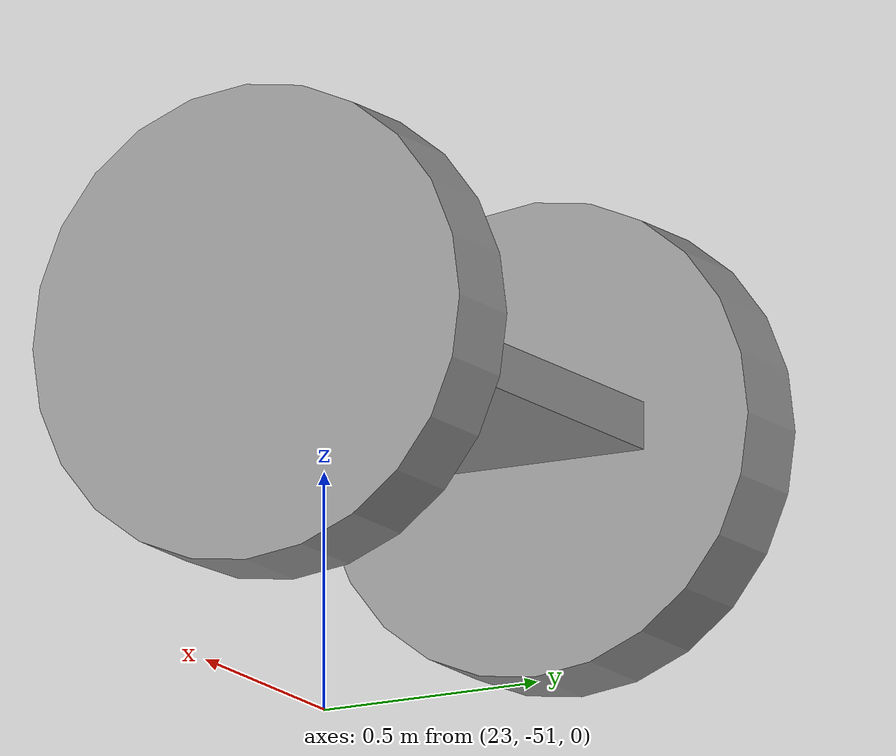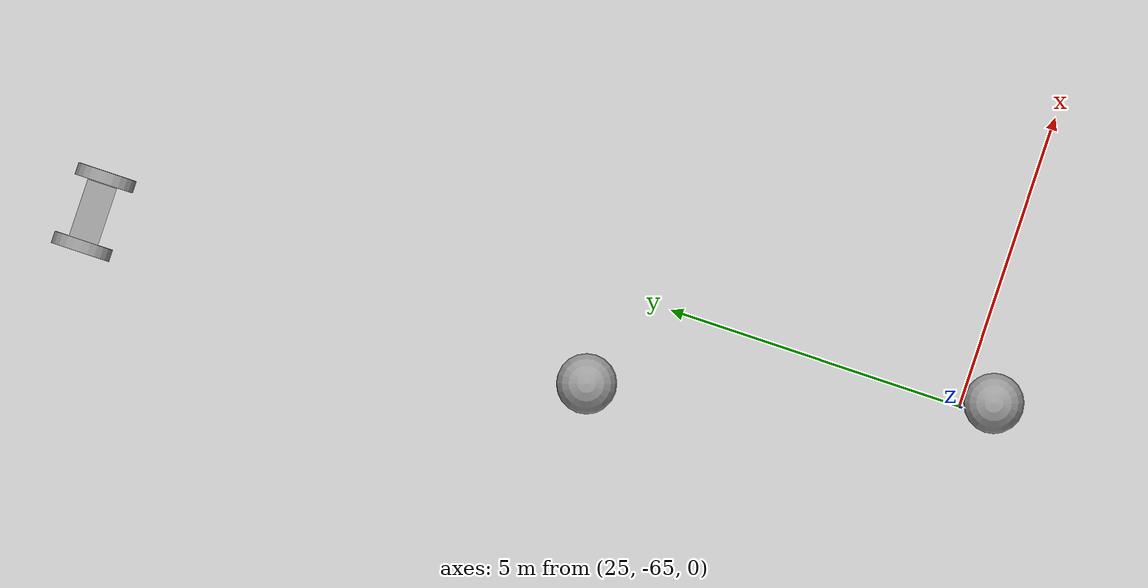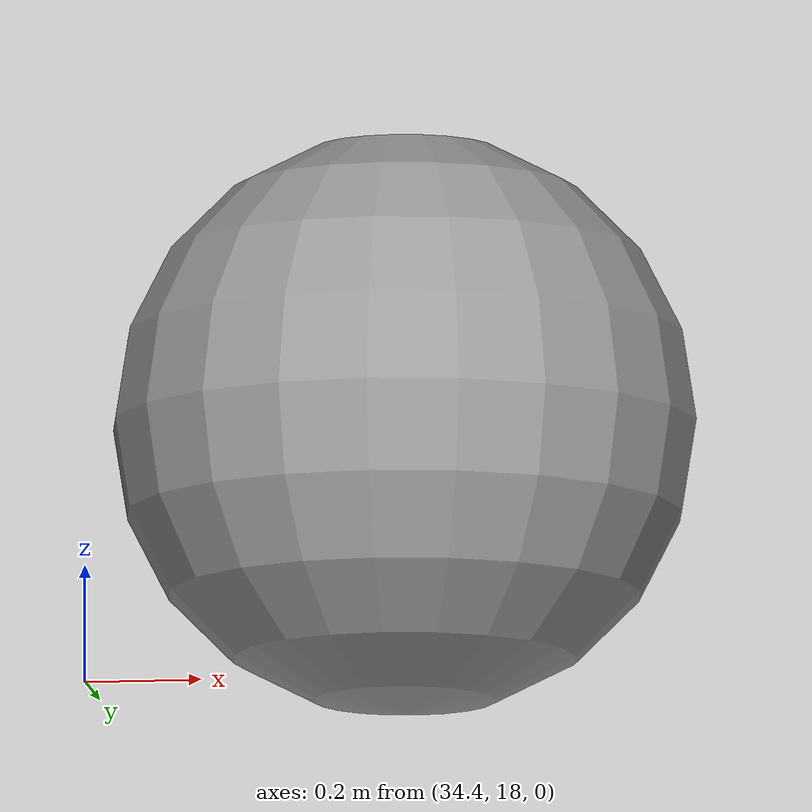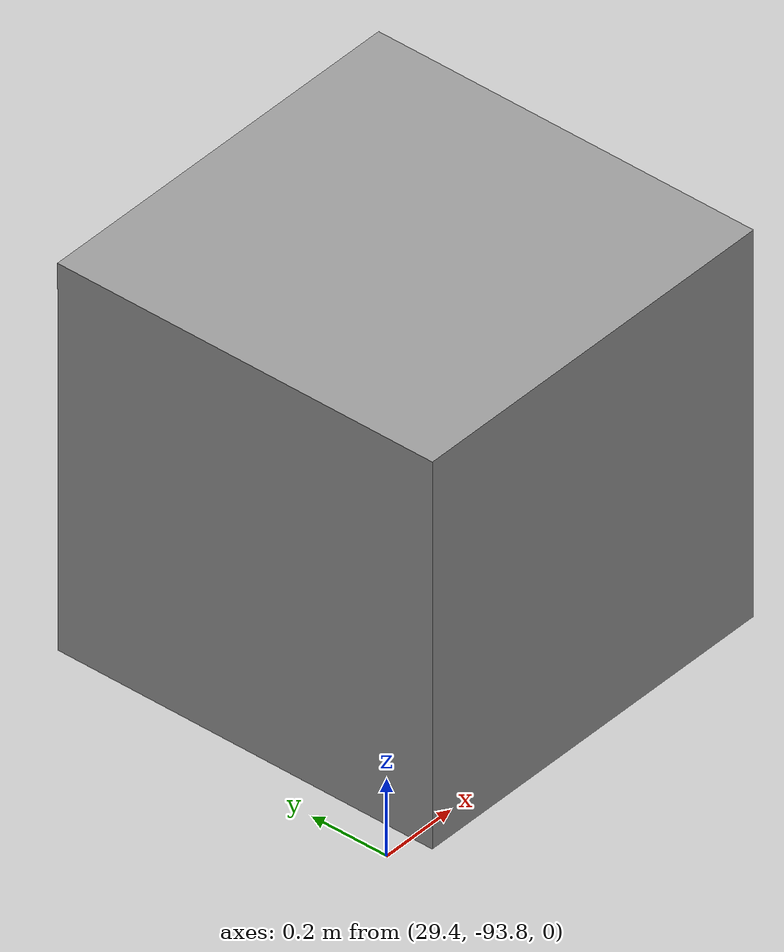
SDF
<?xml version='1.0'?>
<sdf version='1.6'>
  <model name='robot'>
    <link name='link_1'>
      <pose frame=''>23.5228 -50.478 0.5 0 -0 0</pose>
      <inertial>
        <mass>1</mass>
        <inertia>
          <ixx>0.166667</ixx>
          <ixy>0</ixy>
          <ixz>0</ixz>
          <iyy>0.166667</iyy>
          <iyz>0</iyz>
          <izz>0.166667</izz>
        </inertia>
        <pose frame=''>0 0 0 0 -0 0</pose>
      </inertial>
      <gravity>1</gravity>
      <self_collide>0</self_collide>
      <kinematic>0</kinematic>
      <visual name='visual'>
        <pose frame=''>0 0 0 0 -0 0</pose>
        <geometry>
          <box>
            <size>1 0.5 0.1</size>
          </box>
        </geometry>
        <material>
          <lighting>1</lighting>
          <script>
            <uri>file://media/materials/scripts/gazebo.material</uri>
            <name>Gazebo/Grey</name>
          </script>
          <shader type='pixel'>
            <normal_map>__default__</normal_map>
          </shader>
          <ambient>0.3 0.3 0.3 1</ambient>
          <diffuse>0.7 0.7 0.7 1</diffuse>
          <specular>0.01 0.01 0.01 1</specular>
          <emissive>0 0 0 1</emissive>
        </material>
        <transparency>0</transparency>
        <cast_shadows>1</cast_shadows>
      </visual>
      <collision name='collision'>
        <laser_retro>0</laser_retro>
        <max_contacts>10</max_contacts>
        <pose frame=''>0 0 0 0 -0 0</pose>
        <geometry>
          <box>
            <size>1 0.5 0.1</size>
          </box>
        </geometry>
        <surface>
          <friction>
            <ode>
              <mu>1</mu>
              <mu2>1</mu2>
              <fdir1>0 0 0</fdir1>
              <slip1>0</slip1>
              <slip2>0</slip2>
            </ode>
            <torsional>
              <coefficient>1</coefficient>
              <patch_radius>0</patch_radius>
              <surface_radius>0</surface_radius>
              <use_patch_radius>1</use_patch_radius>
              <ode>
                <slip>0</slip>
              </ode>
            </torsional>
          </friction>
          <bounce>
            <restitution_coefficient>0</restitution_coefficient>
            <threshold>1e+06</threshold>
          </bounce>
          <contact>
            <collide_without_contact>0</collide_without_contact>
            <collide_without_contact_bitmask>1</collide_without_contact_bitmask>
            <collide_bitmask>1</collide_bitmask>
            <ode>
              <soft_cfm>0</soft_cfm>
              <soft_erp>0.2</soft_erp>
              <kp>1e+13</kp>
              <kd>1</kd>
              <max_vel>0.01</max_vel>
              <min_depth>0</min_depth>
            </ode>
            <bullet>
              <split_impulse>1</split_impulse>
              <split_impulse_penetration_threshold>-0.01</split_impulse_penetration_threshold>
              <soft_cfm>0</soft_cfm>
              <soft_erp>0.2</soft_erp>
              <kp>1e+13</kp>
              <kd>1</kd>
            </bullet>
          </contact>
        </surface>
      </collision>
    </link>
    <link name='link_14'>
      <pose frame=''>25.9999 -34.7694 0.5 0 -0 0</pose>
      <inertial>
        <mass>1</mass>
        <inertia>
          <ixx>0.1</ixx>
          <ixy>0</ixy>
          <ixz>0</ixz>
          <iyy>0.1</iyy>
          <iyz>0</iyz>
          <izz>0.1</izz>
        </inertia>
      </inertial>
      <visual name='visual'>
        <pose frame=''>0 0 0 0 -0 0</pose>
        <geometry>
          <sphere>
            <radius>0.5</radius>
          </sphere>
        </geometry>
        <material>
          <lighting>1</lighting>
          <script>
            <uri>file://media/materials/scripts/gazebo.material</uri>
            <name>Gazebo/Grey</name>
          </script>
          <shader type='pixel'/>
          <ambient>0.3 0.3 0.3 1</ambient>
          <diffuse>0.7 0.7 0.7 1</diffuse>
          <specular>0.01 0.01 0.01 1</specular>
          <emissive>0 0 0 1</emissive>
        </material>
        <transparency>0</transparency>
        <cast_shadows>1</cast_shadows>
      </visual>
      <collision name='collision'>
        <laser_retro>0</laser_retro>
        <max_contacts>10</max_contacts>
        <pose frame=''>0 0 0 0 -0 0</pose>
        <geometry>
          <sphere>
            <radius>0.5</radius>
          </sphere>
        </geometry>
        <surface>
          <friction>
            <ode>
              <mu>1</mu>
              <mu2>1</mu2>
              <fdir1>0 0 0</fdir1>
              <slip1>0</slip1>
              <slip2>0</slip2>
            </ode>
            <torsional>
              <coefficient>1</coefficient>
              <patch_radius>0</patch_radius>
              <surface_radius>0</surface_radius>
              <use_patch_radius>1</use_patch_radius>
              <ode>
                <slip>0</slip>
              </ode>
            </torsional>
          </friction>
          <bounce>
            <restitution_coefficient>0</restitution_coefficient>
            <threshold>1e+06</threshold>
          </bounce>
          <contact>
            <collide_without_contact>0</collide_without_contact>
            <collide_without_contact_bitmask>1</collide_without_contact_bitmask>
            <collide_bitmask>1</collide_bitmask>
            <ode>
              <soft_cfm>0</soft_cfm>
              <soft_erp>0.2</soft_erp>
              <kp>1e+13</kp>
              <kd>1</kd>
              <max_vel>0.01</max_vel>
              <min_depth>0</min_depth>
            </ode>
            <bullet>
              <split_impulse>1</split_impulse>
              <split_impulse_penetration_threshold>-0.01</split_impulse_penetration_threshold>
              <soft_cfm>0</soft_cfm>
              <soft_erp>0.2</soft_erp>
              <kp>1e+13</kp>
              <kd>1</kd>
            </bullet>
          </contact>
        </surface>
      </collision>
    </link>
    <link name='link_15'>
      <pose frame=''>34.8935 18.4217 0.5 0 -0 0</pose>
      <inertial>
        <mass>1</mass>
        <inertia>
          <ixx>0.1</ixx>
          <ixy>0</ixy>
          <ixz>0</ixz>
          <iyy>0.1</iyy>
          <iyz>0</iyz>
          <izz>0.1</izz>
        </inertia>
      </inertial>
      <visual name='visual'>
        <pose frame=''>0 0 0 0 -0 0</pose>
        <geometry>
          <sphere>
            <radius>0.5</radius>
          </sphere>
        </geometry>
        <material>
          <lighting>1</lighting>
          <script>
            <uri>file://media/materials/scripts/gazebo.material</uri>
            <name>Gazebo/Grey</name>
          </script>
          <shader type='pixel'/>
          <ambient>0.3 0.3 0.3 1</ambient>
          <diffuse>0.7 0.7 0.7 1</diffuse>
          <specular>0.01 0.01 0.01 1</specular>
          <emissive>0 0 0 1</emissive>
        </material>
        <transparency>0</transparency>
        <cast_shadows>1</cast_shadows>
      </visual>
      <collision name='collision'>
        <laser_retro>0</laser_retro>
        <max_contacts>10</max_contacts>
        <pose frame=''>0 0 0 0 -0 0</pose>
        <geometry>
          <sphere>
            <radius>0.5</radius>
          </sphere>
        </geometry>
        <surface>
          <friction>
            <ode>
              <mu>1</mu>
              <mu2>1</mu2>
              <fdir1>0 0 0</fdir1>
              <slip1>0</slip1>
              <slip2>0</slip2>
            </ode>
            <torsional>
              <coefficient>1</coefficient>
              <patch_radius>0</patch_radius>
              <surface_radius>0</surface_radius>
              <use_patch_radius>1</use_patch_radius>
              <ode>
                <slip>0</slip>
              </ode>
            </torsional>
          </friction>
          <bounce>
            <restitution_coefficient>0</restitution_coefficient>
            <threshold>1e+06</threshold>
          </bounce>
          <contact>
            <collide_without_contact>0</collide_without_contact>
            <collide_without_contact_bitmask>1</collide_without_contact_bitmask>
            <collide_bitmask>1</collide_bitmask>
            <ode>
              <soft_cfm>0</soft_cfm>
              <soft_erp>0.2</soft_erp>
              <kp>1e+13</kp>
              <kd>1</kd>
              <max_vel>0.01</max_vel>
              <min_depth>0</min_depth>
            </ode>
            <bullet>
              <split_impulse>1</split_impulse>
              <split_impulse_penetration_threshold>-0.01</split_impulse_penetration_threshold>
              <soft_cfm>0</soft_cfm>
              <soft_erp>0.2</soft_erp>
              <kp>1e+13</kp>
              <kd>1</kd>
            </bullet>
          </contact>
        </surface>
      </collision>
    </link>
    <link name='link_19'>
      <pose frame=''>23.422 -59.0646 0.5 0 -0 0</pose>
      <inertial>
        <mass>1</mass>
        <inertia>
          <ixx>0.1</ixx>
          <ixy>0</ixy>
          <ixz>0</ixz>
          <iyy>0.1</iyy>
          <iyz>0</iyz>
          <izz>0.1</izz>
        </inertia>
      </inertial>
      <visual name='visual'>
        <pose frame=''>0 0 0 0 -0 0</pose>
        <geometry>
          <sphere>
            <radius>0.5</radius>
          </sphere>
        </geometry>
        <material>
          <lighting>1</lighting>
          <script>
            <uri>file://media/materials/scripts/gazebo.material</uri>
            <name>Gazebo/Grey</name>
          </script>
          <shader type='pixel'/>
          <ambient>0.3 0.3 0.3 1</ambient>
          <diffuse>0.7 0.7 0.7 1</diffuse>
          <specular>0.01 0.01 0.01 1</specular>
          <emissive>0 0 0 1</emissive>
        </material>
        <transparency>0</transparency>
        <cast_shadows>1</cast_shadows>
      </visual>
      <collision name='collision'>
        <laser_retro>0</laser_retro>
        <max_contacts>10</max_contacts>
        <pose frame=''>0 0 0 0 -0 0</pose>
        <geometry>
          <sphere>
            <radius>0.5</radius>
          </sphere>
        </geometry>
        <surface>
          <friction>
            <ode>
              <mu>1</mu>
              <mu2>1</mu2>
              <fdir1>0 0 0</fdir1>
              <slip1>0</slip1>
              <slip2>0</slip2>
            </ode>
            <torsional>
              <coefficient>1</coefficient>
              <patch_radius>0</patch_radius>
              <surface_radius>0</surface_radius>
              <use_patch_radius>1</use_patch_radius>
              <ode>
                <slip>0</slip>
              </ode>
            </torsional>
          </friction>
          <bounce>
            <restitution_coefficient>0</restitution_coefficient>
            <threshold>1e+06</threshold>
          </bounce>
          <contact>
            <collide_without_contact>0</collide_without_contact>
            <collide_without_contact_bitmask>1</collide_without_contact_bitmask>
            <collide_bitmask>1</collide_bitmask>
            <ode>
              <soft_cfm>0</soft_cfm>
              <soft_erp>0.2</soft_erp>
              <kp>1e+13</kp>
              <kd>1</kd>
              <max_vel>0.01</max_vel>
              <min_depth>0</min_depth>
            </ode>
            <bullet>
              <split_impulse>1</split_impulse>
              <split_impulse_penetration_threshold>-0.01</split_impulse_penetration_threshold>
              <soft_cfm>0</soft_cfm>
              <soft_erp>0.2</soft_erp>
              <kp>1e+13</kp>
              <kd>1</kd>
            </bullet>
          </contact>
        </surface>
      </collision>
    </link>
    <link name='link_20'>
      <pose frame=''>25.233 -65.5145 0.5 0 -0 0</pose>
      <inertial>
        <mass>1</mass>
        <inertia>
          <ixx>0.1</ixx>
          <ixy>0</ixy>
          <ixz>0</ixz>
          <iyy>0.1</iyy>
          <iyz>0</iyz>
          <izz>0.1</izz>
        </inertia>
      </inertial>
      <visual name='visual'>
        <pose frame=''>0 0 0 0 -0 0</pose>
        <geometry>
          <sphere>
            <radius>0.5</radius>
          </sphere>
        </geometry>
        <material>
          <lighting>1</lighting>
          <script>
            <uri>file://media/materials/scripts/gazebo.material</uri>
            <name>Gazebo/Grey</name>
          </script>
          <shader type='pixel'/>
          <ambient>0.3 0.3 0.3 1</ambient>
          <diffuse>0.7 0.7 0.7 1</diffuse>
          <specular>0.01 0.01 0.01 1</specular>
          <emissive>0 0 0 1</emissive>
        </material>
        <transparency>0</transparency>
        <cast_shadows>1</cast_shadows>
      </visual>
      <collision name='collision'>
        <laser_retro>0</laser_retro>
        <max_contacts>10</max_contacts>
        <pose frame=''>0 0 0 0 -0 0</pose>
        <geometry>
          <sphere>
            <radius>0.5</radius>
          </sphere>
        </geometry>
        <surface>
          <friction>
            <ode>
              <mu>1</mu>
              <mu2>1</mu2>
              <fdir1>0 0 0</fdir1>
              <slip1>0</slip1>
              <slip2>0</slip2>
            </ode>
            <torsional>
              <coefficient>1</coefficient>
              <patch_radius>0</patch_radius>
              <surface_radius>0</surface_radius>
              <use_patch_radius>1</use_patch_radius>
              <ode>
                <slip>0</slip>
              </ode>
            </torsional>
          </friction>
          <bounce>
            <restitution_coefficient>0</restitution_coefficient>
            <threshold>1e+06</threshold>
          </bounce>
          <contact>
            <collide_without_contact>0</collide_without_contact>
            <collide_without_contact_bitmask>1</collide_without_contact_bitmask>
            <collide_bitmask>1</collide_bitmask>
            <ode>
              <soft_cfm>0</soft_cfm>
              <soft_erp>0.2</soft_erp>
              <kp>1e+13</kp>
              <kd>1</kd>
              <max_vel>0.01</max_vel>
              <min_depth>0</min_depth>
            </ode>
            <bullet>
              <split_impulse>1</split_impulse>
              <split_impulse_penetration_threshold>-0.01</split_impulse_penetration_threshold>
              <soft_cfm>0</soft_cfm>
              <soft_erp>0.2</soft_erp>
              <kp>1e+13</kp>
              <kd>1</kd>
            </bullet>
          </contact>
        </surface>
      </collision>
    </link>
    <link name='link_21'>
      <pose frame=''>-201.202 384.783 0.5 0 -0 0</pose>
      <inertial>
        <mass>1</mass>
        <inertia>
          <ixx>0.1</ixx>
          <ixy>0</ixy>
          <ixz>0</ixz>
          <iyy>0.1</iyy>
          <iyz>0</iyz>
          <izz>0.1</izz>
        </inertia>
        <pose frame=''>0 0 0 0 -0 0</pose>
      </inertial>
      <gravity>1</gravity>
      <self_collide>0</self_collide>
      <kinematic>0</kinematic>
      <visual name='visual'>
        <pose frame=''>0 0 0 0 -0 0</pose>
        <geometry>
          <sphere>
            <radius>0.2</radius>
          </sphere>
        </geometry>
        <material>
          <lighting>1</lighting>
          <script>
            <uri>file://media/materials/scripts/gazebo.material</uri>
            <name>Gazebo/Grey</name>
          </script>
          <shader type='pixel'>
            <normal_map>__default__</normal_map>
          </shader>
          <ambient>0.3 0.3 0.3 1</ambient>
          <diffuse>0.7 0.7 0.7 1</diffuse>
          <specular>0.01 0.01 0.01 1</specular>
          <emissive>0 0 0 1</emissive>
        </material>
        <transparency>0</transparency>
        <cast_shadows>1</cast_shadows>
      </visual>
      <collision name='collision'>
        <laser_retro>0</laser_retro>
        <max_contacts>10</max_contacts>
        <pose frame=''>0 0 0 0 -0 0</pose>
        <geometry>
          <sphere>
            <radius>0.2</radius>
          </sphere>
        </geometry>
        <surface>
          <friction>
            <ode>
              <mu>1</mu>
              <mu2>1</mu2>
              <fdir1>0 0 0</fdir1>
              <slip1>0</slip1>
              <slip2>0</slip2>
            </ode>
            <torsional>
              <coefficient>1</coefficient>
              <patch_radius>0</patch_radius>
              <surface_radius>0</surface_radius>
              <use_patch_radius>1</use_patch_radius>
              <ode>
                <slip>0</slip>
              </ode>
            </torsional>
          </friction>
          <bounce>
            <restitution_coefficient>0</restitution_coefficient>
            <threshold>1e+06</threshold>
          </bounce>
          <contact>
            <collide_without_contact>0</collide_without_contact>
            <collide_without_contact_bitmask>1</collide_without_contact_bitmask>
            <collide_bitmask>1</collide_bitmask>
            <ode>
              <soft_cfm>0</soft_cfm>
              <soft_erp>0.2</soft_erp>
              <kp>1e+13</kp>
              <kd>1</kd>
              <max_vel>0.01</max_vel>
              <min_depth>0</min_depth>
            </ode>
            <bullet>
              <split_impulse>1</split_impulse>
              <split_impulse_penetration_threshold>-0.01</split_impulse_penetration_threshold>
              <soft_cfm>0</soft_cfm>
              <soft_erp>0.2</soft_erp>
              <kp>1e+13</kp>
              <kd>1</kd>
            </bullet>
          </contact>
        </surface>
      </collision>
    </link>
    <link name='link_4'>
      <pose frame=''>24.133 -50.4973 0.5 0 1.57 0</pose>
      <inertial>
        <mass>1</mass>
        <inertia>
          <ixx>0.145833</ixx>
          <ixy>0</ixy>
          <ixz>0</ixz>
          <iyy>0.145833</iyy>
          <iyz>0</iyz>
          <izz>0.125</izz>
        </inertia>
        <pose frame=''>0 0 0 0 -0 0</pose>
      </inertial>
      <gravity>1</gravity>
      <self_collide>0</self_collide>
      <kinematic>0</kinematic>
      <visual name='visual'>
        <pose frame=''>0 0 0 0 -0 0</pose>
        <geometry>
          <cylinder>
            <radius>0.5</radius>
            <length>0.2</length>
          </cylinder>
        </geometry>
        <material>
          <lighting>1</lighting>
          <script>
            <uri>file://media/materials/scripts/gazebo.material</uri>
            <name>Gazebo/Grey</name>
          </script>
          <shader type='pixel'>
            <normal_map>__default__</normal_map>
          </shader>
          <ambient>0.3 0.3 0.3 1</ambient>
          <diffuse>0.7 0.7 0.7 1</diffuse>
          <specular>0.01 0.01 0.01 1</specular>
          <emissive>0 0 0 1</emissive>
        </material>
        <transparency>0</transparency>
        <cast_shadows>1</cast_shadows>
      </visual>
      <collision name='collision'>
        <laser_retro>0</laser_retro>
        <max_contacts>10</max_contacts>
        <pose frame=''>0 0 0 0 -0 0</pose>
        <geometry>
          <cylinder>
            <radius>0.5</radius>
            <length>0.2</length>
          </cylinder>
        </geometry>
        <surface>
          <friction>
            <ode>
              <mu>1</mu>
              <mu2>1</mu2>
              <fdir1>0 0 0</fdir1>
              <slip1>0</slip1>
              <slip2>0</slip2>
            </ode>
            <torsional>
              <coefficient>1</coefficient>
              <patch_radius>0</patch_radius>
              <surface_radius>0</surface_radius>
              <use_patch_radius>1</use_patch_radius>
              <ode>
                <slip>0</slip>
              </ode>
            </torsional>
          </friction>
          <bounce>
            <restitution_coefficient>0</restitution_coefficient>
            <threshold>1e+06</threshold>
          </bounce>
          <contact>
            <collide_without_contact>0</collide_without_contact>
            <collide_without_contact_bitmask>1</collide_without_contact_bitmask>
            <collide_bitmask>1</collide_bitmask>
            <ode>
              <soft_cfm>0</soft_cfm>
              <soft_erp>0.2</soft_erp>
              <kp>1e+13</kp>
              <kd>1</kd>
              <max_vel>0.01</max_vel>
              <min_depth>0</min_depth>
            </ode>
            <bullet>
              <split_impulse>1</split_impulse>
              <split_impulse_penetration_threshold>-0.01</split_impulse_penetration_threshold>
              <soft_cfm>0</soft_cfm>
              <soft_erp>0.2</soft_erp>
              <kp>1e+13</kp>
              <kd>1</kd>
            </bullet>
          </contact>
        </surface>
      </collision>
    </link>
    <link name='link_4_clone'>
      <pose frame=''>22.9412 -50.4838 0.5 0 1.57 0</pose>
      <inertial>
        <mass>1</mass>
        <inertia>
          <ixx>0.145833</ixx>
          <ixy>0</ixy>
          <ixz>0</ixz>
          <iyy>0.145833</iyy>
          <iyz>0</iyz>
          <izz>0.125</izz>
        </inertia>
        <pose frame=''>0 0 0 0 -0 0</pose>
      </inertial>
      <self_collide>0</self_collide>
      <kinematic>0</kinematic>
      <gravity>1</gravity>
      <visual name='visual'>
        <pose frame=''>0 0 0 0 -0 0</pose>
        <geometry>
          <cylinder>
            <radius>0.5</radius>
            <length>0.2</length>
          </cylinder>
        </geometry>
        <material>
          <lighting>1</lighting>
          <script>
            <uri>file://media/materials/scripts/gazebo.material</uri>
            <name>Gazebo/Grey</name>
          </script>
          <shader type='pixel'>
            <normal_map>__default__</normal_map>
          </shader>
          <ambient>0.3 0.3 0.3 1</ambient>
          <diffuse>0.7 0.7 0.7 1</diffuse>
          <specular>0.01 0.01 0.01 1</specular>
          <emissive>0 0 0 1</emissive>
        </material>
        <transparency>0</transparency>
        <cast_shadows>1</cast_shadows>
      </visual>
      <collision name='collision'>
        <laser_retro>0</laser_retro>
        <max_contacts>10</max_contacts>
        <pose frame=''>0 0 0 0 -0 0</pose>
        <geometry>
          <cylinder>
            <radius>0.5</radius>
            <length>0.2</length>
          </cylinder>
        </geometry>
        <surface>
          <friction>
            <ode>
              <mu>1</mu>
              <mu2>1</mu2>
              <fdir1>0 0 0</fdir1>
              <slip1>0</slip1>
              <slip2>0</slip2>
            </ode>
            <torsional>
              <coefficient>1</coefficient>
              <patch_radius>0</patch_radius>
              <surface_radius>0</surface_radius>
              <use_patch_radius>1</use_patch_radius>
              <ode>
                <slip>0</slip>
              </ode>
            </torsional>
          </friction>
          <bounce>
            <restitution_coefficient>0</restitution_coefficient>
            <threshold>1e+06</threshold>
          </bounce>
          <contact>
            <collide_without_contact>0</collide_without_contact>
            <collide_without_contact_bitmask>1</collide_without_contact_bitmask>
            <collide_bitmask>1</collide_bitmask>
            <ode>
              <soft_cfm>0</soft_cfm>
              <soft_erp>0.2</soft_erp>
              <kp>1e+13</kp>
              <kd>1</kd>
              <max_vel>0.01</max_vel>
              <min_depth>0</min_depth>
            </ode>
            <bullet>
              <split_impulse>1</split_impulse>
              <split_impulse_penetration_threshold>-0.01</split_impulse_penetration_threshold>
              <soft_cfm>0</soft_cfm>
              <soft_erp>0.2</soft_erp>
              <kp>1e+13</kp>
              <kd>1</kd>
            </bullet>
          </contact>
        </surface>
      </collision>
    </link>
    <link name='link_8'>
      <pose frame=''>29.9781 -93.3556 0.5 0 -0 0</pose>
      <inertial>
        <mass>1</mass>
        <inertia>
          <ixx>0.166667</ixx>
          <ixy>0</ixy>
          <ixz>0</ixz>
          <iyy>0.166667</iyy>
          <iyz>0</iyz>
          <izz>0.166667</izz>
        </inertia>
      </inertial>
      <visual name='visual'>
        <pose frame=''>0 0 0 0 -0 0</pose>
        <geometry>
          <box>
            <size>1 1 1</size>
          </box>
        </geometry>
        <material>
          <lighting>1</lighting>
          <script>
            <uri>file://media/materials/scripts/gazebo.material</uri>
            <name>Gazebo/Grey</name>
          </script>
          <shader type='pixel'/>
          <ambient>0.3 0.3 0.3 1</ambient>
          <diffuse>0.7 0.7 0.7 1</diffuse>
          <specular>0.01 0.01 0.01 1</specular>
          <emissive>0 0 0 1</emissive>
        </material>
        <transparency>0</transparency>
        <cast_shadows>1</cast_shadows>
      </visual>
      <collision name='collision'>
        <laser_retro>0</laser_retro>
        <max_contacts>10</max_contacts>
        <pose frame=''>0 0 0 0 -0 0</pose>
        <geometry>
          <box>
            <size>1 1 1</size>
          </box>
        </geometry>
        <surface>
          <friction>
            <ode>
              <mu>1</mu>
              <mu2>1</mu2>
              <fdir1>0 0 0</fdir1>
              <slip1>0</slip1>
              <slip2>0</slip2>
            </ode>
            <torsional>
              <coefficient>1</coefficient>
              <patch_radius>0</patch_radius>
              <surface_radius>0</surface_radius>
              <use_patch_radius>1</use_patch_radius>
              <ode>
                <slip>0</slip>
              </ode>
            </torsional>
          </friction>
          <bounce>
            <restitution_coefficient>0</restitution_coefficient>
            <threshold>1e+06</threshold>
          </bounce>
          <contact>
            <collide_without_contact>0</collide_without_contact>
            <collide_without_contact_bitmask>1</collide_without_contact_bitmask>
            <collide_bitmask>1</collide_bitmask>
            <ode>
              <soft_cfm>0</soft_cfm>
              <soft_erp>0.2</soft_erp>
              <kp>1e+13</kp>
              <kd>1</kd>
              <max_vel>0.01</max_vel>
              <min_depth>0</min_depth>
            </ode>
            <bullet>
              <split_impulse>1</split_impulse>
              <split_impulse_penetration_threshold>-0.01</split_impulse_penetration_threshold>
              <soft_cfm>0</soft_cfm>
              <soft_erp>0.2</soft_erp>
              <kp>1e+13</kp>
              <kd>1</kd>
            </bullet>
          </contact>
        </surface>
      </collision>
    </link>
    <joint name='link_1_JOINT_1' type='revolute'>
      <parent>link_1</parent>
      <child>link_4</child>
      <pose frame=''>0 0 0 0 -0 0</pose>
      <axis>
        <xyz>1 0 0</xyz>
        <use_parent_model_frame>0</use_parent_model_frame>
        <limit>
          <lower>-1.79769e+308</lower>
          <upper>1.79769e+308</upper>
          <effort>-1</effort>
          <velocity>-1</velocity>
        </limit>
        <dynamics>
          <spring_reference>0</spring_reference>
          <spring_stiffness>0</spring_stiffness>
          <damping>0</damping>
        </dynamics>
      </axis>
      <physics>
        <ode>
          <limit>
            <cfm>0</cfm>
            <erp>0.2</erp>
          </limit>
          <suspension>
            <cfm>0</cfm>
            <erp>0.2</erp>
          </suspension>
        </ode>
      </physics>
    </joint>
    <joint name='link_1_JOINT_2' type='revolute'>
      <parent>link_1</parent>
      <child>link_4_clone</child>
      <pose frame=''>0 0 0 0 -0 0</pose>
      <axis>
        <xyz>1 0 0</xyz>
        <use_parent_model_frame>0</use_parent_model_frame>
        <limit>
          <lower>-1.79769e+308</lower>
          <upper>1.79769e+308</upper>
          <effort>-1</effort>
          <velocity>-1</velocity>
        </limit>
        <dynamics>
          <spring_reference>0</spring_reference>
          <spring_stiffness>0</spring_stiffness>
          <damping>0</damping>
        </dynamics>
      </axis>
      <physics>
        <ode>
          <limit>
            <cfm>0</cfm>
            <erp>0.2</erp>
          </limit>
          <suspension>
            <cfm>0</cfm>
            <erp>0.2</erp>
          </suspension>
        </ode>
      </physics>
    </joint>
    <static>0</static>
    <allow_auto_disable>1</allow_auto_disable>
  </model>
</sdf>
